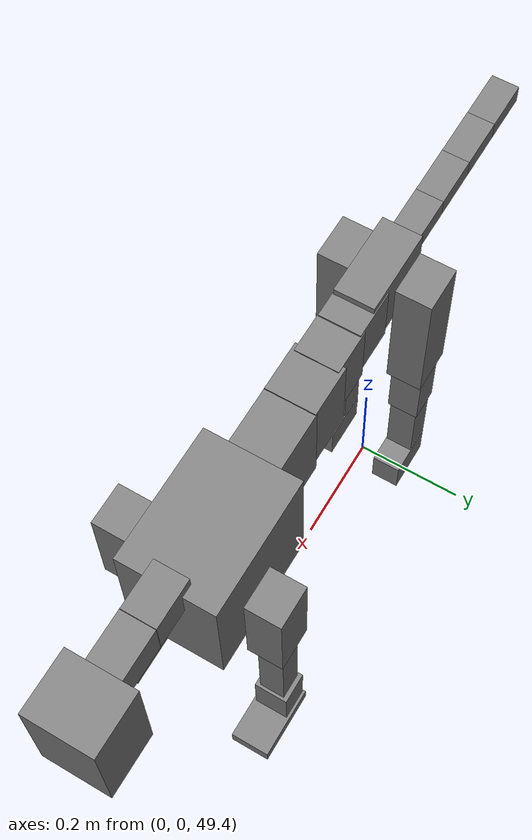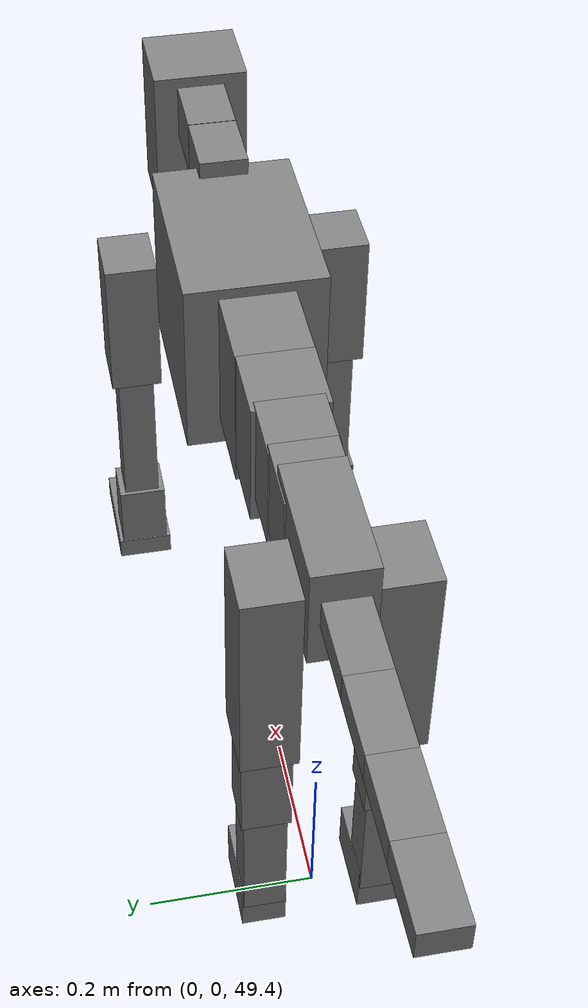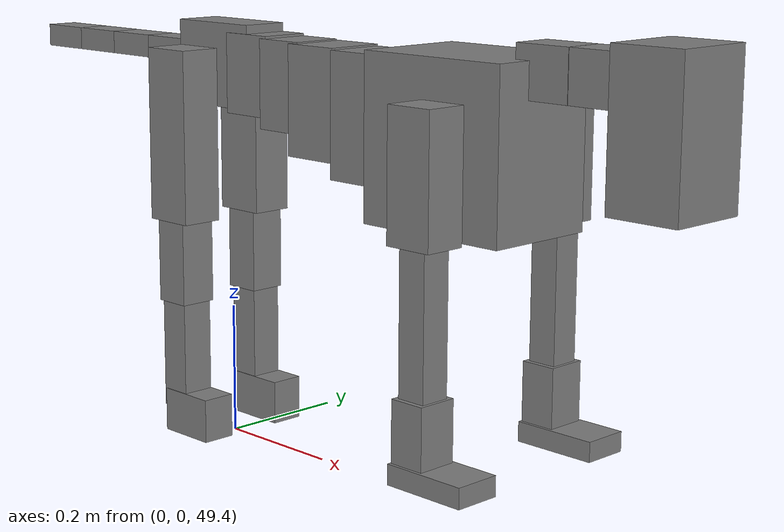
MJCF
<mujoco model="dog">

    <default>
        <joint armature="0.02" stiffness="1" damping="0.2" limited="true"/>
        <geom condim="3" friction="1 0.05 0.05" margin="0.01"/>
        <motor ctrllimited="true" ctrlrange="-1.0 1.0" forcelimited="true" gear="50"/>
    </default>

    <compiler inertiafromgeom="true" angle="radian"/>

    <option timestep="0.016" iterations="50" tolerance="1e-10" solver="Newton" jacobian="dense" cone="pyramidal"/>

    <size nconmax="20000" njmax="60000" nstack="5000000"/>
    <visual>
        <map force="0.1" zfar="30"/>
        <rgba haze="0.15 0.25 0.35 1"/>
        <quality shadowsize="2048"/>
        <global offwidth="800" offheight="800"/>
    </visual>

    <asset>
        <texture type="skybox" builtin="gradient" rgb1="0.3 0.5 0.7" rgb2="0 0 0" width="512" height="512"/>
        <texture name="texplane" type="2d" builtin="checker" rgb1=".2 .3 .4" rgb2=".1 0.15 0.2" width="512" height="512"
                 mark="cross" markrgb=".8 .8 .8"/>
        <texture name="texgeom" type="cube" builtin="flat" mark="cross" width="127" height="1278" rgb1="0.8 0.6 0.4"
                 rgb2="0.8 0.6 0.4" markrgb="1 1 1" random="0.01"/>

        <material name="matplane" reflectance="0.3" texture="texplane" texrepeat="1 1" texuniform="true"/>
        <material name="matgeom" texture="texgeom" texuniform="true" rgba="0.8 0.6 .4 1"/>
    </asset>

    <worldbody>
        <geom name="floor" pos="0 0 0" size="0 0 .25" type="plane" material="matplane" condim="3"/>

        <light directional="false" diffuse=".2 .2 .2" specular="0 0 0" pos="0 0 5" dir="0 0 -1" castshadow="false"/>
        <light mode="targetbodycom" target="torso" directional="false" diffuse=".8 .8 .8" specular="0.3 0.3 0.3"
               pos="0 0 4.0" dir="0 0 -1"/>

        <body name="root" pos="0 0 50">
            <freejoint name="root_1"/>
            <geom type="box" pos="0 0 -0.02" size="0.0774  0.0358  0.063" density="2030"/>

            <body name="spine1" pos="0.054 0 0">
                <joint name="spine1_y" axis="0 1 0" range="0 0.7" limited="true"/>
                <geom type="box" pos="0.02375 0 -0.03" size="0.04375  0.0375  0.05985" density="2030"/>

                <body name="spine2" pos="0.0612 0 0">
                    <joint name="spine2_y" axis="0 1 0" range="-0.15 0.15" limited="true"/>
                    <geom type="box" pos="0.03555  0  -0.04" size="0.04055  0.039  0.06615" density="2030"/>

                    <body name="spine3" pos="0.0730 0 0">
                        <joint name="spine3_y" axis="0 1 0" range="-0.15 0.15" limited="true"/>
                        <geom type="box" pos="0.03555  0  -0.057" size="0.04555  0.0445  0.081" density="2030"/>

                        <body name="spine4" pos="0.0780 0 0">
                            <joint name="spine4_y" axis="0 1 0" range="-0.15 0.15" limited="true"/>
                            <geom type="box" pos="0.05265  0  -0.07" size="0.05265  0.045  0.09135" density="2030"/>

                            <body name="torso" pos="0.1082 0 0">
                                <joint name="torso_y" axis="0 1 0" range="-0.15 0.15" limited="true"/>
                                <geom type="box" pos="0.11925  0  -0.085" size="0.11925  0.085  0.11745"
                                      density="2030"/>

                                <body name="neck1" pos="0.2160  0   0.0180">
                                    <joint name="neck1_y" axis="0 1 0" range="-1.2  -1" limited="true"/>
                                    <geom type="box" pos="0.0423  0  0" size="0.0423  0.03  0.036" density="2325"/>

                                    <body name="neck2" pos="0.0853  0  0">
                                        <joint name="neck2_y" axis="0 1 0" range="0.1  0" limited="true"/>
                                        <geom type="box" pos="0.0423  0  0" size="0.0423  0.03  0.036" density="2325"/>

                                        <body name="head" pos="0.0853  0  0">
                                            <joint name="head_y" axis="0 1 0" range="-0.3  -0.2" limited="true"/>
                                            <geom type="box" pos="0.0531  0  -0.055" size="0.0531  0.06  0.1044"
                                                  density="4030"/>

                                        </body>
                                    </body>
                                </body>

                                <body name="front_shoulder" pos="0.156  0   -0.0480">
                                    <joint name="front_shoulder_y" axis="0 1 0" range="-1 1.5" limited="true"/>
                                    <geom type="box" pos="0 0.13 -0.0644" size="0.0364  0.0311  0.0910" density="1158"/>
                                    <geom type="box" pos="0 -0.13 -0.0644" size="0.0364  0.0311  0.0910"
                                          density="1158"/>

                                    <body name="front_elbow" pos="0  0  -0.1288">
                                        <joint name="front_elbow_y" axis="0 1 0" range="-2 0" limited="true"/>
                                        <geom type="box" pos="0 0.13 -0.1202" size="0.0218  0.0223  0.1202"
                                              density="1081"/>
                                        <geom type="box" pos="0 -0.13 -0.1202" size="0.0218  0.0223  0.1202"
                                              density="1081"/>

                                        <body name="front_wrist" pos="0  0  -0.2404">
                                            <joint name="front_wrist_y" axis="0 1 0" range="-0.2 0" limited="true"/>
                                            <geom type="box" pos="0 0.13 -0.0447" size="0.0268  0.0298  0.0578"
                                                  density="1664"/>
                                            <geom type="box" pos="0 -0.13 -0.0447" size="0.0268  0.0298  0.0578"
                                                  density="1664"/>

                                            <body name="front_finger_end" pos="0  0  -0.0893">
                                                <joint name="front_finger_y" axis="0 1 0" range="-0.4 1"
                                                       limited="true"/>
                                                <geom type="box" pos="0.0345  0.13  0.0005"
                                                      size="0.0632  0.0345  0.0145" density="1515"/>
                                                <geom type="box" pos="0.0345  -0.13  0.0005"
                                                      size="0.0632  0.0345  0.0145" density="1515"/>

                                            </body>

                                        </body>
                                    </body>
                                </body>

                            </body>
                        </body>
                    </body>
                </body>
            </body>

            <body name="back_hip" pos="-0.03 0 -0.018">
                <joint name="back_hip_y" axis="0 1 0" range="-1.5 0.3" limited="true"/>
                <geom type="box" pos="0 0.07 -0.1080" size="0.0412  0.0323  0.1308" density="1154"/>
                <geom type="box" pos="0 -0.07 -0.1080" size="0.0412  0.0323  0.1308" density="1154"/>

                <body name="back_knee" pos="0  0  -0.2161">
                    <joint name="back_knee_y" axis="0 1 0" range="0 2.8" limited="true"/>
                    <geom type="box" pos="0 0.07 -0.0669" size="0.0288  0.0284  0.0825" density="1227"/>
                    <geom type="box" pos="0 -0.07 -0.0669" size="0.0288  0.0284  0.0825" density="1227"/>

                    <body name="back_ankle" pos="0  0  -0.1339">
                        <joint name="back_ankle_y" axis="0 1 0" range="-2.2 0" limited="true"/>
                        <geom type="box" pos="0 0.07 -0.0855" size="0.0249  0.0249  0.0967" density="1284"/>
                        <geom type="box" pos="0 -0.07 -0.0855" size="0.0249  0.0249  0.0967" density="1284"/>

                        <body name="back_toe_end" pos="0  0  -0.1709">
                            <joint name="back_toe_y" axis="0 1 0" range="-0.4 1" limited="true"/>
                            <geom type="box" pos="0.0260  0.07  -0.0183" size="0.0476  0.0260  0.0333" density="1515"/>
                            <geom type="box" pos="0.0260  -0.07  -0.0183" size="0.0476  0.0260  0.0333" density="1515"/>

                        </body>
                    </body>
                </body>
            </body>

            <body name="tail1" pos="-0.074 0 -0.006">
                <joint name="tail1_y" axis="0 1 0" range="-0.2 0.2" limited="true"/>
                <geom type="box" pos="-0.0536  0  0" size="0.045  0.025  0.0175" density="1587"/>

                <body name="tail2" pos="-0.09 0 0">
                    <joint name="tail2_y" axis="0 1 0" range="-0.2 0.2" limited="true"/>
                    <geom type="box" pos="-0.0536  0  0" size="0.045  0.025  0.0175" density="1587"/>

                    <body name="tail3" pos="-0.09 0 0">
                        <joint name="tail3_y" axis="0 1 0" range="-0.2 0.2" limited="true"/>
                        <geom type="box" pos="-0.0536  0  0" size="0.045  0.025  0.0175" density="1587"/>

                        <body name="tail4" pos="-0.09 0 0">
                            <joint name="tail4_y" axis="0 1 0" range="-0.2 0.2" limited="true"/>
                            <geom type="box" pos="-0.0536  0  0" size="0.045  0.025  0.0175" density="1587"/>

                        </body>
                    </body>
                </body>
            </body>
        </body>
    </worldbody>

    <actuator>
        <motor joint="spine1_y" forcerange="-150 150     "/>
        <motor joint="spine2_y" forcerange="-150 150     "/>
        <motor joint="spine3_y" forcerange="-150 150     "/>
        <motor joint="spine4_y" forcerange="-150 150     "/>
        <motor joint="torso_y" forcerange="-150 150     "/>
        <motor joint="neck1_y" forcerange="-100 100       "/>
        <motor joint="neck2_y" forcerange="-100 100       "/>
        <motor joint="head_y" forcerange="-150 150       "/>
        <motor joint="front_shoulder_y" forcerange="-133.52 174.00"/>
        <motor joint="front_elbow_y" forcerange="-116.31 145.59"/>
        <motor joint="front_wrist_y" forcerange="-130.23 107.89"/>
        <motor joint="front_finger_y" forcerange="-69.39 74.55"/>
        <motor joint="back_hip_y" forcerange="-276.80 353.78"/>
        <motor joint="back_knee_y" forcerange="-318.03 294.36"/>
        <motor joint="back_angle_y" forcerange="-71.88 227.06"/>
        <motor joint="back_toe_y" forcerange="-54.72 73.13"/>
        <motor joint="tail1_y" forcerange="-50 50     "/>
        <motor joint="tail2_y" forcerange="-50 50     "/>
        <motor joint="tail3_y" forcerange="-50 50     "/>
        <motor joint="tail4_y" forcerange="-50 50     "/>
    </actuator>
</mujoco>
